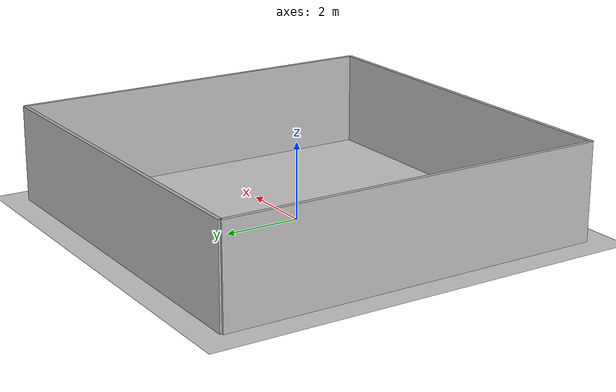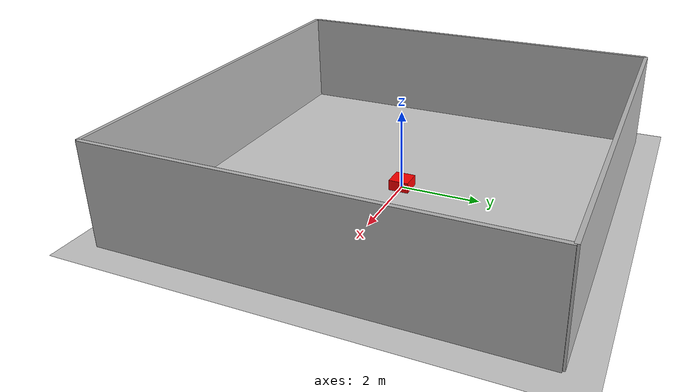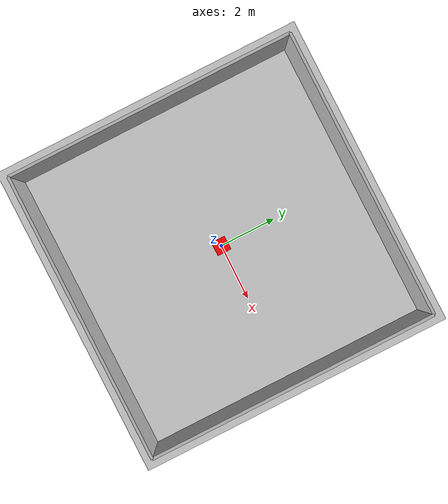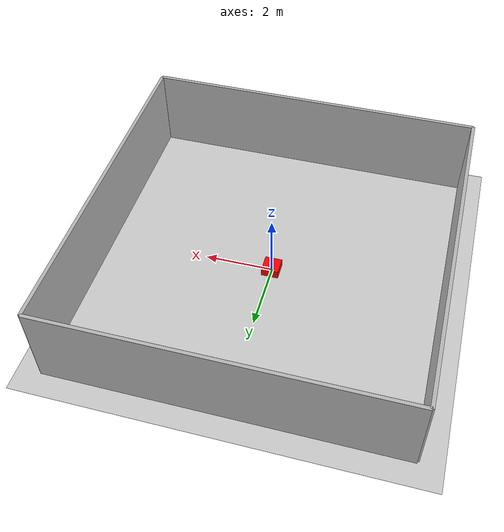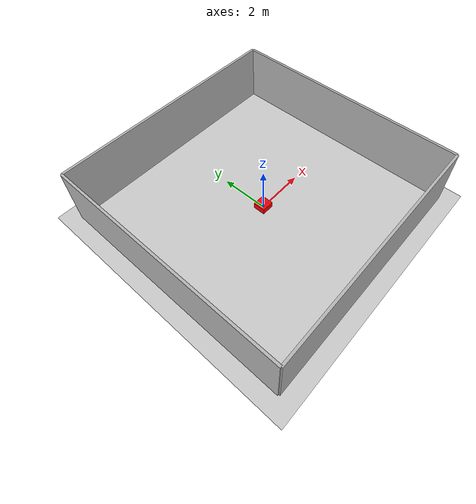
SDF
<?xml version="1.0" ?>
<sdf version="1.6">
  <world name="closed_env">

    <!-- Physics -->
    <physics type="ode">
      <max_step_size>0.001</max_step_size>
      <real_time_update_rate>1000</real_time_update_rate>
    </physics>

    <!-- Light -->
    <include>
      <uri>model://sun</uri>
    </include>

    <!-- Floor -->
    <include>
      <uri>model://ground_plane</uri>
    </include>

    <!-- Four walls -->
    <model name="walls">
      <static>true</static>
      <link name="wall_link">
        <!-- Back wall -->
        <collision name="collision_back">
          <geometry><box><size>10 0.1 2.5</size></box></geometry>
          <pose>0 -5 1.25 0 0 0</pose>
        </collision>
        <visual name="visual_back">
          <geometry><box><size>10 0.1 2.5</size></box></geometry>
          <pose>0 -5 1.25 0 0 0</pose>
        </visual>

        <!-- Front wall -->
        <collision name="collision_front">
          <geometry><box><size>10 0.1 2.5</size></box></geometry>
          <pose>0 5 1.25 0 0 0</pose>
        </collision>
        <visual name="visual_front">
          <geometry><box><size>10 0.1 2.5</size></box></geometry>
          <pose>0 5 1.25 0 0 0</pose>
        </visual>

        <!-- Left wall -->
        <collision name="collision_left">
          <geometry><box><size>0.1 10 2.5</size></box></geometry>
          <pose>-5 0 1.25 0 0 0</pose>
        </collision>
        <visual name="visual_left">
          <geometry><box><size>0.1 10 2.5</size></box></geometry>
          <pose>-5 0 1.25 0 0 0</pose>
        </visual>

        <!-- Right wall -->
        <collision name="collision_right">
          <geometry><box><size>0.1 10 2.5</size></box></geometry>
          <pose>5 0 1.25 0 0 0</pose>
        </collision>
        <visual name="visual_right">
          <geometry><box><size>0.1 10 2.5</size></box></geometry>
          <pose>5 0 1.25 0 0 0</pose>
        </visual>
      </link>
    </model>

    <!-- A moving obstacle -->
    <model name="moving_box">
      <static>false</static>
      <link name="link">
        <collision name="collision">
          <geometry><box><size>0.5 0.5 0.5</size></box></geometry>
        </collision>
        <visual name="visual">
          <geometry><box><size>0.5 0.5 0.5</size></box></geometry>
          <material><ambient>1 0 0 1</ambient></material>
        </visual>
      </link>

      <!-- Make it move in a loop -->
      <plugin name="box_mover" filename="libgazebo_ros_planar_move.so">
        <ros>
          <namespace>/moving_box</namespace>
        </ros>
        <x_vel>0.5</x_vel>
        <y_vel>0.0</y_vel>
      </plugin>
    </model>

  </world>
</sdf>
